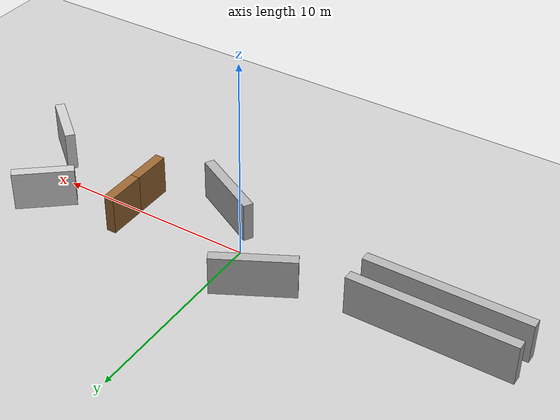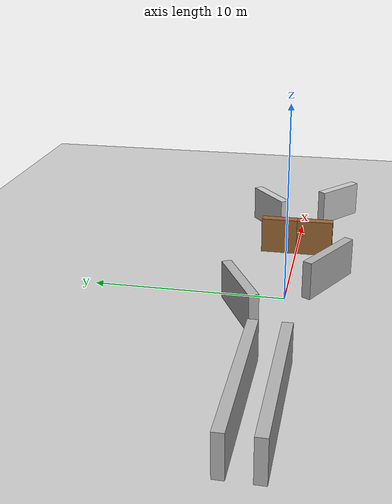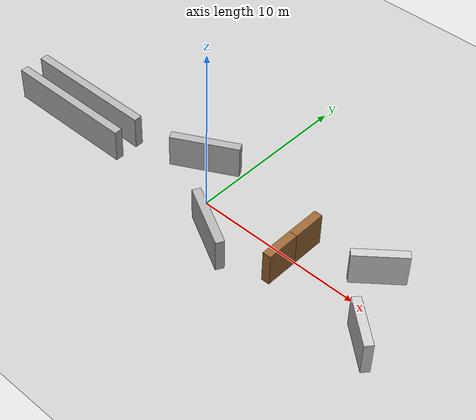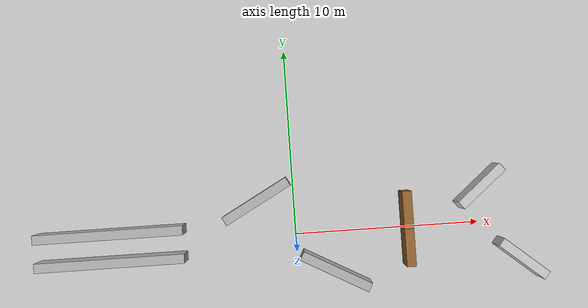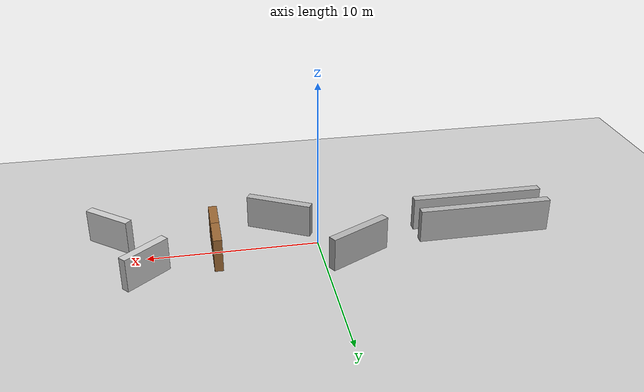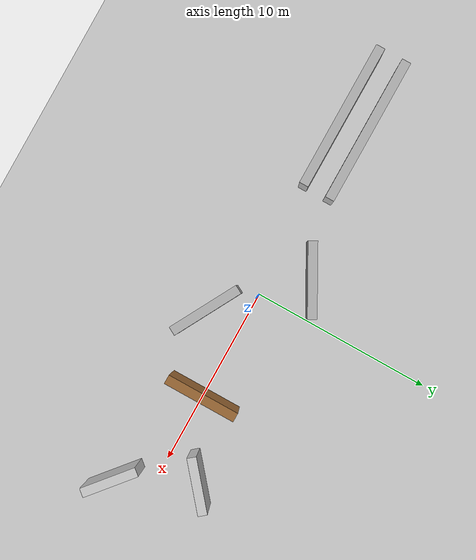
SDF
<?xml version="1.0" ?>
<sdf version="1.6">
  <world name="narrow_corridors">
    <include>
      <uri>model://sun</uri>
    </include>
    <include>
      <uri>model://ground_plane</uri>
    </include>

    <!-- Narrow corridor 1 -->
    <model name="wall1_left">
      <static>true</static>
      <pose>-10 0.75 1 0 0 0</pose>
      <link name="link">
        <collision name="collision">
          <geometry>
            <box>
              <size>8 0.5 2</size>
            </box>
          </geometry>
        </collision>
        <visual name="visual">
          <geometry>
            <box>
              <size>8 0.5 2</size>
            </box>
          </geometry>
          <material>
            <ambient>0.7 0.7 0.7 1</ambient>
          </material>
        </visual>
      </link>
    </model>

    <model name="wall1_right">
      <static>true</static>
      <pose>-10 -0.75 1 0 0 0</pose>
      <link name="link">
        <collision name="collision">
          <geometry>
            <box>
              <size>8 0.5 2</size>
            </box>
          </geometry>
        </collision>
        <visual name="visual">
          <geometry>
            <box>
              <size>8 0.5 2</size>
            </box>
          </geometry>
          <material>
            <ambient>0.7 0.7 0.7 1</ambient>
          </material>
        </visual>
      </link>
    </model>

    <!-- S-curve corridor -->
    <model name="scurve_wall1">
      <static>true</static>
      <pose>-2 2 1 0 0 0.5</pose>
      <link name="link">
        <collision name="collision">
          <geometry>
            <box>
              <size>4 0.5 2</size>
            </box>
          </geometry>
        </collision>
        <visual name="visual">
          <geometry>
            <box>
              <size>4 0.5 2</size>
            </box>
          </geometry>
          <material>
            <ambient>0.7 0.7 0.7 1</ambient>
          </material>
        </visual>
      </link>
    </model>

    <model name="scurve_wall2">
      <static>true</static>
      <pose>2 -2 1 0 0 -0.5</pose>
      <link name="link">
        <collision name="collision">
          <geometry>
            <box>
              <size>4 0.5 2</size>
            </box>
          </geometry>
        </collision>
        <visual name="visual">
          <geometry>
            <box>
              <size>4 0.5 2</size>
            </box>
          </geometry>
          <material>
            <ambient>0.7 0.7 0.7 1</ambient>
          </material>
        </visual>
      </link>
    </model>

    <!-- Narrow doorways -->
    <model name="door_frame1_left">
      <static>true</static>
      <pose>6 1 1 0 0 0</pose>
      <link name="link">
        <collision name="collision">
          <geometry>
            <box>
              <size>0.5 2 2</size>
            </box>
          </geometry>
        </collision>
        <visual name="visual">
          <geometry>
            <box>
              <size>0.5 2 2</size>
            </box>
          </geometry>
          <material>
            <ambient>0.6 0.4 0.2 1</ambient>
          </material>
        </visual>
      </link>
    </model>

    <model name="door_frame1_right">
      <static>true</static>
      <pose>6 -1 1 0 0 0</pose>
      <link name="link">
        <collision name="collision">
          <geometry>
            <box>
              <size>0.5 2 2</size>
            </box>
          </geometry>
        </collision>
        <visual name="visual">
          <geometry>
            <box>
              <size>0.5 2 2</size>
            </box>
          </geometry>
          <material>
            <ambient>0.6 0.4 0.2 1</ambient>
          </material>
        </visual>
      </link>
    </model>

    <!-- Zigzag walls -->
    <model name="zigzag_wall1">
      <static>true</static>
      <pose>10 2 1 0 0 0.7</pose>
      <link name="link">
        <collision name="collision">
          <geometry>
            <box>
              <size>3 0.5 2</size>
            </box>
          </geometry>
        </collision>
        <visual name="visual">
          <geometry>
            <box>
              <size>3 0.5 2</size>
            </box>
          </geometry>
          <material>
            <ambient>0.8 0.8 0.8 1</ambient>
          </material>
        </visual>
      </link>
    </model>

    <model name="zigzag_wall2">
      <static>true</static>
      <pose>12 -2 1 0 0 -0.7</pose>
      <link name="link">
        <collision name="collision">
          <geometry>
            <box>
              <size>3 0.5 2</size>
            </box>
          </geometry>
        </collision>
        <visual name="visual">
          <geometry>
            <box>
              <size>3 0.5 2</size>
            </box>
          </geometry>
          <material>
            <ambient>0.8 0.8 0.8 1</ambient>
          </material>
        </visual>
      </link>
    </model>

  </world>
</sdf>
